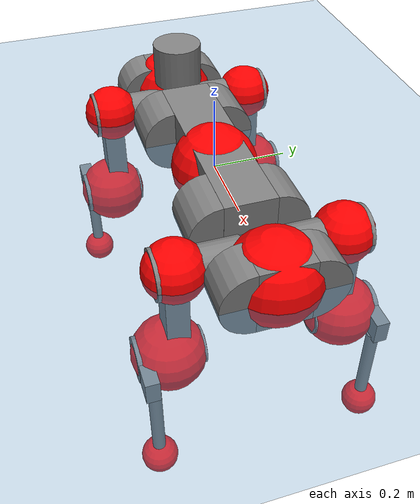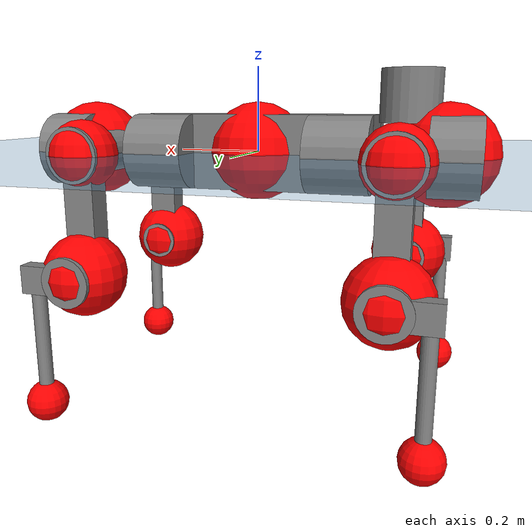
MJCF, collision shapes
<mujoco model="anymal_c">
  <compiler angle="radian" assetdir="assets" balanceinertia="true" inertiafromgeom="false"/>

  <option timestep="0.005" density="1.2" viscosity="2e-05"/>

  <size nkey="1"/>

  <visual>
    <quality shadowsize="8192"/>
    <map shadowclip="0.5"/>
  </visual>

  <default>
    <default class="/">
      <material specular="0" shininess="0.25"/>
      <geom contype="0" conaffinity="0" group="1" solref="-1000 -80"/>
      <site size="0.01 0.005 0.005" group="5"/>
      <general forcelimited="true" forcerange="-80 80" biastype="affine" gainprm="80" biasprm="0 -80 -2"/>
      <default class="anymal_c">
        <joint armature="0.01" damping="0.01" frictionloss="0.1"/>
        <default class="visual">
          <geom type="mesh" group="2"/>
          <default class="visual_zflip"/>
        </default>
        <default class="collision">
          <geom type="cylinder" group="3"/>
          <default class="foot">
            <geom size="0.03 0 0" type="sphere" condim="6" priority="1" friction="0.8 0.02 0.01" solimp="0.015 1 0.03"/>
          </default>
        </default>
      </default>
      <default class="reward_collision_sphere">
        <geom group="5" rgba="1 0 0 1"/>
      </default>
    </default>
  </default>

  <asset>
    <texture type="skybox" colorspace="auto" name="//unnamed_texture_0" builtin="gradient" rgb1="0.95 0.95 0.95" rgb2="0.95 0.95 0.95" width="100" height="600"/>
    <texture type="2d" colorspace="auto" name="texplane" builtin="checker" rgb1="0.345 0.575 0.748" rgb2="0.345 0.575 0.748" markrgb="1 1 1" width="512" height="512"/>
    <texture type="2d" colorspace="linear" name="base" file="base.png"/>
    <texture type="2d" colorspace="linear" name="top_shell" file="top_shell.png"/>
    <texture type="2d" colorspace="linear" name="bottom_shell" file="bottom_shell.png"/>
    <texture type="2d" colorspace="linear" name="remote" file="remote.png"/>
    <texture type="2d" colorspace="linear" name="hatch" file="hatch.png"/>
    <texture type="2d" colorspace="linear" name="handle" file="handle.png"/>
    <texture type="2d" colorspace="linear" name="face" file="face.png"/>
    <texture type="2d" colorspace="linear" name="battery" file="battery.png"/>
    <texture type="2d" colorspace="linear" name="lidar_cage" file="lidar_cage.png"/>
    <texture type="2d" colorspace="linear" name="depth_camera" file="depth_camera.png"/>
    <texture type="2d" colorspace="linear" name="wide_angle_camera" file="wide_angle_camera.png"/>
    <texture type="2d" colorspace="linear" name="lidar" file="lidar.png"/>
    <texture type="2d" colorspace="linear" name="drive" file="drive.png"/>
    <texture type="2d" colorspace="linear" name="hip_l" file="hip_l.png"/>
    <texture type="2d" colorspace="linear" name="shank_l" file="shank_l.png"/>
    <texture type="2d" colorspace="linear" name="foot" file="foot.png"/>
    <texture type="2d" colorspace="linear" name="thigh" file="thigh.png"/>
    <texture type="2d" colorspace="linear" name="shank_r" file="shank_r.png"/>
    <texture type="2d" colorspace="linear" name="hip_r" file="hip_r.png"/>
    <material name="MatPlane" class="/" texture="texplane" texuniform="true" texrepeat="2 2" specular="0.9" shininess="0.5"/>
    <material name="black_plastic" class="/" rgba="0.007 0.007 0.007 1"/>
    <material name="green" class="/" rgba="0.052 0.178 0.033 1"/>
    <material name="red" class="/" rgba="0.178 0.006 0.005 1"/>
    <material name="yellow" class="/" rgba="0.178 0.119 0.006 1"/>
    <material name="lwl" class="/" rgba="0.8 0.8 0.8 1"/>
    <material name="base" class="/" texture="base"/>
    <material name="top_shell" class="/" texture="top_shell"/>
    <material name="bottom_shell" class="/" texture="bottom_shell"/>
    <material name="hip_l" class="/" texture="hip_l"/>
    <material name="thigh" class="/" texture="thigh"/>
    <material name="shank_l" class="/" texture="shank_l"/>
    <material name="foot" class="/" texture="foot"/>
    <material name="hip_r" class="/" texture="hip_r"/>
    <material name="shank" class="/" texture="shank_r"/>
    <material name="hatch" class="/" texture="hatch"/>
    <material name="remote" class="/" texture="remote"/>
    <material name="handle" class="/" texture="handle"/>
    <material name="face" class="/" texture="face"/>
    <material name="depth_camera" class="/" texture="depth_camera"/>
    <material name="wide_angle_camera" class="/" texture="wide_angle_camera"/>
    <material name="battery" class="/" texture="battery"/>
    <material name="lidar_cage" class="/" texture="lidar_cage"/>
    <material name="lidar" class="/" texture="lidar"/>
    <material name="drive" class="/" texture="drive"/>
    <mesh name="base_0" class="/" file="base_0.obj"/>
    <mesh name="base_1" class="/" file="base_1.obj"/>
    <mesh name="base_2" class="/" file="base_2.obj"/>
    <mesh name="base_3" class="/" file="base_3.obj"/>
    <mesh name="base_4" class="/" file="base_4.obj"/>
    <mesh name="base_5" class="/" file="base_5.obj"/>
    <mesh name="top_shell" class="/" file="top_shell.obj"/>
    <mesh name="bottom_shell" class="/" file="bottom_shell.obj"/>
    <mesh name="remote" class="/" file="remote.obj"/>
    <mesh name="handle" class="/" file="handle.obj"/>
    <mesh name="face" class="/" file="face.obj"/>
    <mesh name="wide_angle_camera" class="/" file="wide_angle_camera.obj"/>
    <mesh name="depth_camera" class="/" file="depth_camera.obj"/>
    <mesh name="battery" class="/" file="battery.obj"/>
    <mesh name="lidar_cage" class="/" file="lidar_cage.obj"/>
    <mesh name="lidar" class="/" file="lidar.obj"/>
    <mesh name="drive" class="/" file="drive.obj"/>
    <mesh name="hip_l" class="/" file="hip_l.obj"/>
    <mesh name="thigh" class="/" file="thigh.obj"/>
    <mesh name="shank_l" class="/" file="shank_l.obj"/>
    <mesh name="foot" class="/" file="foot.obj"/>
    <mesh name="hip_r" class="/" file="hip_r.obj"/>
    <mesh name="hatch" class="/" file="hatch.obj"/>
    <mesh name="shank_r" class="/" file="shank_r.obj"/>
  </asset>

  <worldbody>
    <geom name="floor" class="/" size="100 100 0.125" type="plane" group="0" material="MatPlane"/>
    <light name="toplight_shadow" class="/" pos="0 0 5" dir="0.0990148 0.0990148 -0.990148" type="directional" ambient="0.04 0.04 0.04" diffuse="0.55 0.55 0.55" specular="0.12 0.12 0.12"/>
    <light name="toplight_fill" class="/" pos="0 0 5" dir="0.0990148 0.0990148 -0.990148" type="directional" castshadow="false" ambient="0.04 0.04 0.04" diffuse="0.3 0.3 0.3" specular="0.08 0.08 0.08"/>
    <body name="trunk" childclass="anymal_c" pos="-0.00014265 2.38863e-05 0.00079406" quat="1 1.78203e-05 1.9387e-05 -1.40583e-05">
      <inertial pos="0.00274754 -0.000166911 0.048097" quat="0.50068 0.499823 0.499603 0.499894" mass="17.7072" diaginertia="0.580206 0.589081 0.190132"/>
      <joint name="//unnamed_joint_0" type="free" armature="0" damping="0" frictionloss="0"/>
      <geom name="//unnamed_geom_1" class="visual" material="green" mesh="base_0"/>
      <geom name="//unnamed_geom_2" class="visual" material="yellow" mesh="base_1"/>
      <geom name="//unnamed_geom_3" class="visual" material="red" mesh="base_2"/>
      <geom name="//unnamed_geom_4" class="visual" material="black_plastic" mesh="base_3"/>
      <geom name="//unnamed_geom_5" class="visual" material="lwl" mesh="base_4"/>
      <geom name="//unnamed_geom_6" class="visual" material="base" mesh="base_5"/>
      <geom name="trunk_1" class="collision" size="0.285456 0.0689033 0.0885899" type="box"/>
      <geom name="trunk_2" class="collision" size="0.0885899 0.0713641" pos="0.213941 0.0694015 0" quat="0.707107 0 0.707107 0"/>
      <geom name="trunk_3" class="collision" size="0.0885899 0.0713641" pos="-0.213941 0.0694015 0" quat="0.707107 0 0.707107 0"/>
      <geom name="trunk_4" class="collision" size="0.0885899 0.0713641" pos="0.213941 -0.0694015 0" quat="0.707107 0 0.707107 0"/>
      <geom name="trunk_5" class="collision" size="0.0885899 0.0713641" pos="-0.213941 -0.0694015 0" quat="0.707107 0 0.707107 0"/>
      <geom name="//unnamed_geom_12" class="visual" material="top_shell" mesh="top_shell"/>
      <geom name="//unnamed_geom_13" class="visual" material="bottom_shell" mesh="bottom_shell"/>
      <geom name="//unnamed_geom_14" class="visual" material="remote" mesh="remote"/>
      <geom name="//unnamed_geom_15" class="visual" material="handle" mesh="handle"/>
      <geom name="//unnamed_geom_16" class="visual" pos="0.407718 0 0" quat="1 0 0 0" material="face" mesh="face"/>
      <geom name="trunk_6" class="collision" size="0.0541383 0.0689033 0.0885899" pos="0.461818 0 0" type="box"/>
      <geom name="//unnamed_geom_18" class="collision" size="0.0885899 0.0541383" pos="0.461818 0.0694015 0" quat="0.707107 0 0.707107 0"/>
      <geom name="//unnamed_geom_19" class="collision" size="0.0885899 0.0541383" pos="0.461818 -0.0694015 0" quat="0.707107 0 0.707107 0"/>
      <geom name="//unnamed_geom_20" class="visual" pos="0.454096 0 -0.0285115" quat="0.965926 0 0.258819 0" material="depth_camera" mesh="depth_camera"/>
      <geom name="//unnamed_geom_21" class="visual" pos="0.504606 0 0.0146393" material="wide_angle_camera" mesh="wide_angle_camera"/>
      <geom name="//unnamed_geom_22" class="visual_zflip" pos="-0.407718 0 0" quat="0 0 0 1" material="face" mesh="face"/>
      <geom name="trunk_7" class="collision" size="0.0541383 0.0689033 0.0885899" pos="-0.461818 0 0" quat="0 0 0 1" type="box"/>
      <geom name="//unnamed_geom_24" class="collision" size="0.0885899 0.0541383" pos="-0.461818 -0.0694015 0" quat="0 -0.707107 0 0.707107"/>
      <geom name="//unnamed_geom_25" class="collision" size="0.0885899 0.0541383" pos="-0.461818 0.0694015 0" quat="0 -0.707107 0 0.707107"/>
      <geom name="//unnamed_geom_26" class="visual" pos="-0.454096 0 -0.0285115" quat="0 -0.258819 0 0.965926" material="depth_camera" mesh="depth_camera"/>
      <geom name="//unnamed_geom_27" class="visual_zflip" pos="-0.504606 0 0.0146393" quat="0 0 0 1" material="wide_angle_camera" mesh="wide_angle_camera"/>
      <geom name="//unnamed_geom_28" class="visual" material="battery" mesh="battery"/>
      <geom name="//unnamed_geom_29" class="visual" pos="0 0.0759085 0.0284518" quat="0.683013 -0.183013 0.183013 0.683013" material="depth_camera" mesh="depth_camera"/>
      <geom name="//unnamed_geom_30" class="visual" pos="0 -0.0759085 0.0284518" quat="0.683013 0.183013 0.183013 -0.683013" material="depth_camera" mesh="depth_camera"/>
      <geom name="//unnamed_geom_31" class="visual" pos="-0.358044 0 0.0718765" quat="1 0 0 0" material="lidar_cage" mesh="lidar_cage"/>
      <geom name="trunk_8" class="collision" size="0.0689033 0.05906" pos="-0.358044 0 0.130551"/>
      <geom name="//unnamed_geom_33" class="visual" pos="-0.358044 3.06913e-06 0.139059" quat="0.707107 0 0 -0.707107" material="lidar" mesh="lidar"/>
      <geom name="//unnamed_geom_34" class="visual" pos="0.294993 0.103106 2.33533e-10" quat="0.258819 0.965926 0 0" material="drive" mesh="drive"/>
      <geom name="//unnamed_geom_35" class="visual" pos="0.294993 -0.103106 -2.33533e-10" quat="0.258819 -0.965926 0 0" material="drive" mesh="drive"/>
      <geom name="//unnamed_geom_36" class="visual" pos="-0.294993 0.103106 -2.33533e-10" quat="0 0 0.965926 -0.258819" material="drive" mesh="drive"/>
      <geom name="//unnamed_geom_37" class="visual" pos="-0.294993 -0.103106 2.33533e-10" quat="0 0 -0.965926 -0.258819" material="drive" mesh="drive"/>
      <geom name="//unnamed_geom_38" class="visual" pos="0.114102 0 0.0713875" quat="1 0 0 0" material="hatch" mesh="hatch"/>
      <geom name="//unnamed_geom_39" class="reward_collision_sphere" size="0.11812"/>
      <geom name="//unnamed_geom_40" class="reward_collision_sphere" size="0.11812" pos="0.442637 0 0"/>
      <geom name="//unnamed_geom_41" class="reward_collision_sphere" size="0.11812" pos="-0.442637 0 0"/>
      <site name="imu" pos="0.24044 0.00681707 0.0453642" size="0.00984333"/>
      <camera name="track" pos="0 -1.9829 0" quat="0.707107 0.707107 0 0" mode="trackcom"/>
      <camera name="ego_camera" pos="0.442637 0 -0.0391165" quat="-0.5 -0.5 0.5 0.5"/>
      <body name="LF_HIP" pos="0.295687 0.10298 -0.000103677" quat="0.258475 0.966018 0.000187013 0.000221273">
        <inertial pos="0.0559212 -0.0140951 -0.00771934" quat="-0.124165 0.709456 -0.137735 0.679915" mass="2.65274" diaginertia="0.0053855 0.00471517 0.00295231"/>
        <joint name="LF_HAA" pos="0 0 0" axis="1 -0.000604384 0.000377532" range="-0.713732 0.473" armature="0.0101141" damping="0.00481616" frictionloss="0.0959896"/>
        <geom name="//unnamed_geom_42" class="visual" pos="0 1.37377e-05 -2.2564e-06" quat="0.258819 -0.965926 0 0" material="hip_l" mesh="hip_l"/>
        <geom name="//unnamed_geom_43" class="visual" pos="0.0589199 -0.071492 -0.0411758" quat="0.183013 -0.683013 0.683013 0.183013" material="drive" mesh="drive"/>
        <geom name="//unnamed_geom_44" class="collision" size="0.0492166 0.0689033" pos="0.0589199 -0.0118575 -0.00675248" quat="-0.353553 -0.612372 0.612372 -0.353553"/>
        <body name="LF_THIGH" pos="0.0592289 -0.0729122 -0.0418589" quat="0.182997 -0.683083 0.682958 0.182969">
          <inertial pos="0.0297987 -4.67695e-05 -0.240008" quat="0.993036 -0.00458638 -0.0811742 0.0852623" mass="2.88362" diaginertia="0.0276589 0.0285246 0.00370547"/>
          <joint name="LF_HFE" pos="0 0 0" axis="0.999997 0.00226395 0.000750224" stiffness="0.000495137" range="-3.14825 3.14869" armature="0.010049" damping="0.00878616" frictionloss="0.0984033"/>
          <geom name="//unnamed_geom_45" class="visual" pos="-0.000155428 -2.44919e-07 0" quat="0.707107 0 0 -0.707107" material="thigh" mesh="thigh"/>
          <geom name="//unnamed_geom_46" class="collision" size="0.0639816 0.0393733" pos="0.0393455 0 0" quat="0.5 0.5 -0.5 -0.5"/>
          <geom name="//unnamed_geom_47" class="collision" size="0.0369125 0.02953 0.1391" pos="0.0295091 0 -0.138193" quat="0.707107 0 0 -0.707107" type="box"/>
          <geom name="//unnamed_geom_48" class="visual" pos="0.0986588 0 -0.278705" quat="1 0 0 0" material="drive" mesh="drive"/>
          <geom name="//unnamed_geom_49" class="collision" size="0.0492166 0.0689033" pos="0.0298042 0 -0.278705" quat="0.707107 0 0.707107 0"/>
          <geom name="//unnamed_geom_50" class="reward_collision_sphere" size="0.0787466" pos="0.0245909 0 0"/>
          <body name="LF_SHANK" pos="0.0980152 0.000161167 -0.279398" quat="1 -5.32913e-05 -0.000103515 8.32587e-05">
            <inertial pos="0.00488148 -0.0607548 -0.0793459" quat="0.99274 -0.117506 -0.00174393 -0.025636" mass="0.569138" diaginertia="0.00946941 0.00886338 0.00100592"/>
            <joint name="LF_KFE" pos="0 0 0" axis="1 -0.000245563 -0.000206948" range="-3.12373 3.13404" armature="0.00938467" damping="0.00793396" frictionloss="0.0939963"/>
            <geom name="//unnamed_geom_51" class="visual" pos="-5.06818e-05 -0.000270238 0" quat="0.707107 0 0 -0.707107" material="shank_l" mesh="shank_l"/>
            <geom name="LF_kfe_act" class="collision" size="0.05906 0.0196867" pos="0.0196727 0 0" quat="0.5 0.5 -0.5 -0.5"/>
            <geom name="//unnamed_geom_53" class="collision" size="0.0565981 0.0332212 0.0187023" pos="0.0196727 -0.0570073 0" quat="0.5 0.5 -0.5 -0.5" type="box"/>
            <geom name="//unnamed_geom_54" class="visual" pos="0.0128365 -0.0872851 -0.330505" quat="0.382683 0 0 -0.92388" material="foot" mesh="foot"/>
            <geom name="LF_calf" class="collision" size="0.0172258 0.139039" pos="0.0128365 -0.087198 -0.165252" quat="0.707107 0 0 -0.707107"/>
            <geom name="LF_foot" class="foot" size="0.0316534" pos="0.0128365 -0.087198 -0.308502" quat="0.707107 0 0 -0.707107"/>
            <geom name="//unnamed_geom_57" class="reward_collision_sphere" size="0.0984333" pos="-0.0491819 0 0"/>
            <geom name="//unnamed_geom_58" class="reward_collision_sphere" size="0.0492166" pos="0.0128365 -0.087198 -0.308502"/>
            <site name="LF_foot" class="foot" pos="0.0128365 -0.087198 -0.308502" quat="0.707107 0 0 -0.707107" size="0.00984333"/>
          </body>
        </body>
      </body>
      <body name="RF_HIP" pos="0.296358 -0.103786 0.000402868" quat="0.258835 -0.965921 2.9161e-05 1.08536e-06">
        <inertial pos="0.0558428 0.0155272 -0.00836282" quat="0.135656 0.679101 0.128857 0.7098" mass="2.60934" diaginertia="0.00537472 0.0046068 0.00291218"/>
        <joint name="RF_HAA" pos="0 0 0" axis="1 2.4824e-05 0.000390244" range="-0.498078 0.728953" armature="0.00989817" damping="0.00915727" frictionloss="0.098055"/>
        <geom name="//unnamed_geom_59" class="visual" pos="0 -1.37376e-05 -2.2564e-06" quat="0.258819 0.965926 0 0" material="hip_r" mesh="hip_r"/>
        <geom name="//unnamed_geom_60" class="visual" pos="0.0589199 0.071492 -0.0411758" quat="0.183013 0.683013 0.683013 -0.183013" material="drive" mesh="drive"/>
        <geom name="//unnamed_geom_61" class="collision" size="0.0492166 0.0689033" pos="0.0589199 0.0118575 -0.00675248" quat="-0.353553 0.612372 0.612372 0.353553"/>
        <body name="RF_THIGH" pos="0.0597087 0.0724476 -0.0407435" quat="0.182934 0.682966 0.683056 -0.183105">
          <inertial pos="0.0302688 0.000361699 -0.240015" quat="0.992779 -0.00538553 -0.0803044 0.0889475" mass="2.93169" diaginertia="0.0280124 0.0285105 0.00373456"/>
          <joint name="RF_HFE" pos="0 0 0" axis="1 -0.000194358 -0.000253573" stiffness="0.00600031" range="-3.12586 3.12165" armature="0.00989419" damping="0.00995687" frictionloss="0.104404"/>
          <geom name="//unnamed_geom_62" class="visual" pos="-0.000155428 -2.44919e-07 0" quat="0.707107 0 0 -0.707107" material="thigh" mesh="thigh"/>
          <geom name="//unnamed_geom_63" class="collision" size="0.0639816 0.0393733" pos="0.0393455 0 0" quat="0.5 0.5 0.5 0.5"/>
          <geom name="//unnamed_geom_64" class="collision" size="0.0369125 0.02953 0.1391" pos="0.0295091 0 -0.138193" quat="0.707107 0 0 0.707107" type="box"/>
          <geom name="//unnamed_geom_65" class="visual" pos="0.0986588 0 -0.278705" quat="1 0 0 0" material="drive" mesh="drive"/>
          <geom name="//unnamed_geom_66" class="collision" size="0.0492166 0.0689033" pos="0.0298042 0 -0.278705" quat="0.707107 0 0.707107 0"/>
          <geom name="//unnamed_geom_67" class="reward_collision_sphere" size="0.0787466" pos="0.0245909 0 0"/>
          <body name="RF_SHANK" pos="0.0987239 -0.00031595 -0.279114" quat="1 -7.38838e-05 2.34289e-05 -0.000111428">
            <inertial pos="0.00541759 0.0610645 -0.0782962" quat="0.992941 0.116068 -0.00532245 0.0238187" mass="0.557703" diaginertia="0.00925864 0.00888401 0.000995666"/>
            <joint name="RF_KFE" pos="0 0 0" axis="1 5.42944e-05 8.05642e-05" range="-3.11838 3.1189" armature="0.00983834" damping="0.0103666" frictionloss="0.0953449"/>
            <geom name="//unnamed_geom_68" class="visual" pos="-5.06815e-05 0.000270238 0" quat="0.707107 0 0 0.707107" material="shank" mesh="shank_r"/>
            <geom name="RF_kfe_act" class="collision" size="0.05906 0.0196867" pos="0.0196727 0 0" quat="0.5 0.5 0.5 0.5"/>
            <geom name="//unnamed_geom_70" class="collision" size="0.0565981 0.0332212 0.0187023" pos="0.0196727 0.0570073 0" quat="0.5 0.5 0.5 0.5" type="box"/>
            <geom name="//unnamed_geom_71" class="visual" pos="0.0128365 0.0872851 -0.330505" quat="0.382683 0 0 0.92388" material="foot" mesh="foot"/>
            <geom name="RF_calf" class="collision" size="0.0172258 0.139039" pos="0.0128365 0.087198 -0.165252" quat="0.707107 0 0 0.707107"/>
            <geom name="RF_foot" class="foot" size="0.0281872" pos="0.0128365 0.087198 -0.308502" quat="0.707107 0 0 0.707107"/>
            <geom name="//unnamed_geom_74" class="reward_collision_sphere" size="0.0984333" pos="-0.0491819 0 0"/>
            <geom name="//unnamed_geom_75" class="reward_collision_sphere" size="0.0492166" pos="0.0128365 0.087198 -0.308502"/>
            <site name="RF_foot" class="foot" pos="0.0128365 0.087198 -0.308502" quat="0.707107 0 0 0.707107" size="0.00984333"/>
          </body>
        </body>
      </body>
      <body name="LH_HIP" pos="-0.294951 0.10296 -8.99597e-05" quat="0.000152099 -4.72195e-05 0.965946 -0.258745">
        <inertial pos="0.0552096 0.0151647 -0.00848043" quat="0.136796 0.676052 0.12676 0.712862" mass="2.63607" diaginertia="0.00541525 0.00476304 0.00294809"/>
        <joint name="LH_HAA" pos="0 0 0" axis="1 -1.14502e-05 -0.000196832" range="-0.497928 0.69902" armature="0.00976531" damping="0.0125408" frictionloss="0.0997277"/>
        <geom name="//unnamed_geom_76" class="visual" pos="0 -1.37376e-05 -2.2564e-06" quat="-0.258819 -0.965926 0 0" material="hip_r" mesh="hip_r"/>
        <geom name="//unnamed_geom_77" class="visual" pos="0.0589199 0.071492 -0.0411758" quat="0.183013 0.683013 0.683013 -0.183013" material="drive" mesh="drive"/>
        <geom name="//unnamed_geom_78" class="collision" size="0.0492166 0.0689033" pos="0.0589199 0.0118575 -0.00675248" quat="-0.353553 0.612372 0.612372 0.353553"/>
        <body name="LH_THIGH" pos="0.0590982 0.0714107 -0.0410442" quat="0.183146 0.682955 0.683069 -0.182886">
          <inertial pos="0.0304024 -0.000491552 -0.2405" quat="0.992895 -0.00483874 -0.0798208 0.0881129" mass="2.9295" diaginertia="0.0278579 0.0289807 0.00375037"/>
          <joint name="LH_HFE" pos="0 0 0" axis="1 -0.000817107 -7.10454e-05" range="-3.14244 3.13902" armature="0.0102445" damping="0.0124047" frictionloss="0.0975867"/>
          <geom name="//unnamed_geom_79" class="visual" pos="-0.000155428 -2.44919e-07 0" quat="0.707107 0 0 -0.707107" material="thigh" mesh="thigh"/>
          <geom name="//unnamed_geom_80" class="collision" size="0.0639816 0.0393733" pos="0.0393455 0 0" quat="0.5 0.5 -0.5 -0.5"/>
          <geom name="//unnamed_geom_81" class="collision" size="0.0369125 0.02953 0.1391" pos="0.0295091 0 -0.138193" quat="0.707107 0 0 -0.707107" type="box"/>
          <geom name="//unnamed_geom_82" class="visual" pos="0.0986588 0 -0.278705" quat="1 0 0 0" material="drive" mesh="drive"/>
          <geom name="//unnamed_geom_83" class="collision" size="0.0492166 0.0689033" pos="0.0298042 0 -0.278705" quat="0.707107 0 0.707107 0"/>
          <geom name="//unnamed_geom_84" class="reward_collision_sphere" size="0.0787466" pos="0.0245909 0 0"/>
          <body name="LH_SHANK" pos="0.0999571 -0.000883053 -0.278782" quat="1 -0.000132659 -3.7859e-05 4.23354e-05">
            <inertial pos="0.00540862 0.0607414 -0.0789734" quat="0.992615 0.11731 0.000412369 0.030881" mass="0.561663" diaginertia="0.00932546 0.00886869 0.000989986"/>
            <joint name="LH_KFE" pos="0 0 0" axis="0.999999 -0.000993471 0.000411542" range="-3.14957 3.14257" armature="0.0101155" damping="0.00850461" frictionloss="0.0941439"/>
            <geom name="//unnamed_geom_85" class="visual" pos="-5.06815e-05 0.000270238 0" quat="-0.707107 0 0 -0.707107" material="shank" mesh="shank_r"/>
            <geom name="LH_kfe_act" class="collision" size="0.05906 0.0196867" pos="0.0196727 0 0" quat="0.5 0.5 -0.5 -0.5"/>
            <geom name="//unnamed_geom_87" class="collision" size="0.0565981 0.0332212 0.0187023" pos="0.0196727 0.0570073 0" quat="0.5 0.5 -0.5 -0.5" type="box"/>
            <geom name="//unnamed_geom_88" class="visual" pos="0.0128365 0.0872851 -0.330505" quat="-0.382683 0 0 -0.92388" material="foot" mesh="foot"/>
            <geom name="LH_calf" class="collision" size="0.0172258 0.139039" pos="0.0128365 0.087198 -0.165252" quat="0.707107 0 0 -0.707107"/>
            <geom name="LH_foot" class="foot" size="0.0311383" pos="0.0128365 0.087198 -0.308502" quat="0.707107 0 0 -0.707107"/>
            <geom name="//unnamed_geom_91" class="reward_collision_sphere" size="0.0984333" pos="-0.0491819 0 0"/>
            <geom name="//unnamed_geom_92" class="reward_collision_sphere" size="0.0492166" pos="0.0128365 0.087198 -0.308502"/>
            <site name="LH_foot" class="foot" pos="0.0128365 0.087198 -0.308502" quat="0.707107 0 0 -0.707107" size="0.00984333"/>
          </body>
        </body>
      </body>
      <body name="RH_HIP" pos="-0.294968 -0.103458 0.000421647" quat="-5.40546e-06 -2.05349e-06 -0.965926 -0.258819">
        <inertial pos="0.0554119 -0.0154631 -0.00842241" quat="-0.127785 0.70887 -0.135161 0.680372" mass="2.68141" diaginertia="0.00545252 0.00475709 0.00294876"/>
        <joint name="RH_HAA" pos="0 0 0" axis="0.999999 0.00111036 -0.000108401" stiffness="0.00201006" range="-0.719648 0.508481" armature="0.00984686" damping="0.013618" frictionloss="0.0978435"/>
        <geom name="//unnamed_geom_93" class="visual" pos="0 1.37377e-05 -2.2564e-06" quat="-0.258819 0.965926 0 0" material="hip_l" mesh="hip_l"/>
        <geom name="//unnamed_geom_94" class="visual" pos="0.0589199 -0.071492 -0.0411758" quat="-0.183013 0.683013 -0.683013 -0.183013" material="drive" mesh="drive"/>
        <geom name="//unnamed_geom_95" class="collision" size="0.0492166 0.0689033" pos="0.0589199 -0.0118575 -0.00675248" quat="0.353553 0.612372 -0.612372 0.353553"/>
        <body name="RH_THIGH" pos="0.058537 -0.0711847 -0.0405333" quat="-0.182995 0.682928 -0.683057 -0.183182">
          <inertial pos="0.0297326 -0.000453677 -0.239623" quat="0.993195 -0.00492269 -0.0803979 0.0841188" mass="2.86414" diaginertia="0.0275382 0.0281899 0.00371471"/>
          <joint name="RH_HFE" pos="0 0 0" axis="1 3.78046e-05 9.43206e-06" stiffness="0.000391233" range="-3.14611 3.14107" armature="0.0100694" damping="0.0093278" frictionloss="0.0982561"/>
          <geom name="//unnamed_geom_96" class="visual" pos="-0.000155428 -2.44919e-07 0" quat="0.707107 0 0 -0.707107" material="thigh" mesh="thigh"/>
          <geom name="//unnamed_geom_97" class="collision" size="0.0639816 0.0393733" pos="0.0393455 0 0" quat="0.5 0.5 0.5 0.5"/>
          <geom name="//unnamed_geom_98" class="collision" size="0.0369125 0.02953 0.1391" pos="0.0295091 0 -0.138193" quat="0.707107 0 0 0.707107" type="box"/>
          <geom name="//unnamed_geom_99" class="visual" pos="0.0986588 0 -0.278705" quat="1 0 0 0" material="drive" mesh="drive"/>
          <geom name="//unnamed_geom_100" class="collision" size="0.0492166 0.0689033" pos="0.0298042 0 -0.278705" quat="0.707107 0 0.707107 0"/>
          <geom name="//unnamed_geom_101" class="reward_collision_sphere" size="0.0787466" pos="0.0245909 0 0"/>
          <body name="RH_SHANK" pos="0.0979863 -0.000453713 -0.278962" quat="1 -7.18837e-05 -0.000377311 0.000173285">
            <inertial pos="0.00579266 -0.0606439 -0.0792295" quat="0.993025 -0.115146 -0.00187895 -0.0252907" mass="0.560339" diaginertia="0.00943674 0.00878985 0.000995204"/>
            <joint name="RH_KFE" pos="0 0 0" axis="0.999962 0.000595844 0.00871972" range="-3.13335 3.13524" armature="0.00951548" damping="0.00816449" frictionloss="0.0981638"/>
            <geom name="//unnamed_geom_102" class="visual" pos="-5.06818e-05 -0.000270238 0" quat="0.707107 0 0 -0.707107" material="shank_l" mesh="shank_l"/>
            <geom name="RH_kfe_act" class="collision" size="0.05906 0.0196867" pos="0.0196727 0 0" quat="0.5 0.5 0.5 0.5"/>
            <geom name="//unnamed_geom_104" class="collision" size="0.0565981 0.0332212 0.0187023" pos="0.0196727 -0.0570073 0" quat="0.5 0.5 0.5 0.5" type="box"/>
            <geom name="//unnamed_geom_105" class="visual" pos="0.0128365 -0.0872851 -0.330505" quat="0.382683 0 0 -0.92388" material="foot" mesh="foot"/>
            <geom name="RH_calf" class="collision" size="0.0172258 0.139039" pos="0.0128365 -0.087198 -0.165252" quat="0.707107 0 0 0.707107"/>
            <geom name="RH_foot" class="foot" size="0.0276466" pos="0.0128365 -0.087198 -0.308502" quat="0.707107 0 0 0.707107"/>
            <geom name="//unnamed_geom_108" class="reward_collision_sphere" size="0.0984333" pos="-0.0491819 0 0"/>
            <geom name="//unnamed_geom_109" class="reward_collision_sphere" size="0.0492166" pos="0.0128365 -0.087198 -0.308502"/>
            <site name="RH_foot" class="foot" pos="0.0128365 -0.087198 -0.308502" quat="0.707107 0 0 0.707107" size="0.00984333"/>
          </body>
        </body>
      </body>
    </body>
  </worldbody>

  <contact>
    <pair class="/" geom1="floor" geom2="LF_foot" name="//unnamed_contact_0"/>
    <pair class="/" geom1="floor" geom2="RF_foot" name="//unnamed_contact_1"/>
    <pair class="/" geom1="floor" geom2="LH_foot" name="//unnamed_contact_2"/>
    <pair class="/" geom1="floor" geom2="RH_foot" name="//unnamed_contact_3"/>
  </contact>

  <actuator>
    <general name="LF_HAA" class="/" joint="LF_HAA" forcerange="-78.2665 78.2665" gainprm="82.158" biasprm="0 -82.158 -1.96254"/>
    <general name="LF_HFE" class="/" joint="LF_HFE" forcerange="-81.4364 81.4364" gainprm="82.158" biasprm="0 -82.158 -1.96254"/>
    <general name="LF_KFE" class="/" joint="LF_KFE" forcerange="-77.9449 77.9449" gainprm="82.158" biasprm="0 -82.158 -1.96254"/>
    <general name="RF_HAA" class="/" joint="RF_HAA" forcerange="-81.9665 81.9665" gainprm="82.158" biasprm="0 -82.158 -1.96254"/>
    <general name="RF_HFE" class="/" joint="RF_HFE" forcerange="-77.1288 77.1288" gainprm="82.158" biasprm="0 -82.158 -1.96254"/>
    <general name="RF_KFE" class="/" joint="RF_KFE" forcerange="-79.5183 79.5183" gainprm="82.158" biasprm="0 -82.158 -1.96254"/>
    <general name="LH_HAA" class="/" joint="LH_HAA" forcerange="-79.1192 79.1192" gainprm="82.158" biasprm="0 -82.158 -1.96254"/>
    <general name="LH_HFE" class="/" joint="LH_HFE" forcerange="-79.841 79.841" gainprm="82.158" biasprm="0 -82.158 -1.96254"/>
    <general name="LH_KFE" class="/" joint="LH_KFE" forcerange="-78.8192 78.8192" gainprm="82.158" biasprm="0 -82.158 -1.96254"/>
    <general name="RH_HAA" class="/" joint="RH_HAA" forcerange="-78.6308 78.6308" gainprm="82.158" biasprm="0 -82.158 -1.96254"/>
    <general name="RH_HFE" class="/" joint="RH_HFE" forcerange="-77.4476 77.4476" gainprm="82.158" biasprm="0 -82.158 -1.96254"/>
    <general name="RH_KFE" class="/" joint="RH_KFE" forcerange="-77.9638 77.9638" gainprm="82.158" biasprm="0 -82.158 -1.96254"/>
  </actuator>

  <sensor>
    <gyro site="imu" name="imu_angular_velocity"/>
    <velocimeter site="imu" name="imu_linear_velocity"/>
    <framelinvel objtype="site" objname="LF_foot" name="LF_foot_global_linear_velocity"/>
    <framelinvel objtype="site" objname="RF_foot" name="RF_foot_global_linear_velocity"/>
    <framelinvel objtype="site" objname="LH_foot" name="LH_foot_global_linear_velocity"/>
    <framelinvel objtype="site" objname="RH_foot" name="RH_foot_global_linear_velocity"/>
  </sensor>

  <keyframe>
    <key name="home" qpos="0 0 0.55 1 0 0 0 0 0.4 -0.8 0 -0.4 0.8 0 -0.4 0.8 0 0.4 -0.8"/>
  </keyframe>
</mujoco>
